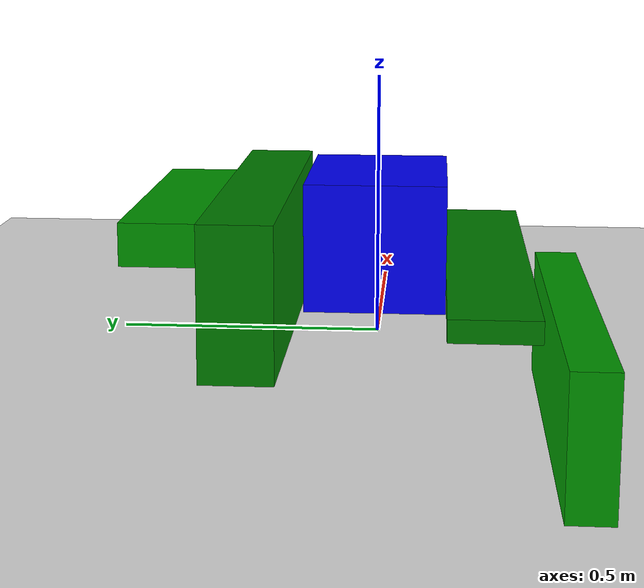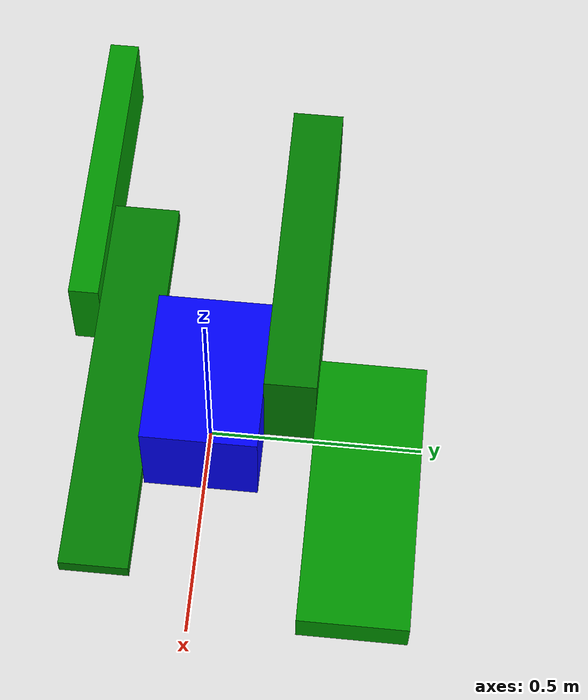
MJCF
<mujoco>
    <worldbody>
    <light diffuse=".5 .5 .5" pos="0 0 3" dir="0 0 -1"/>
    <geom type="plane" size="5 5 0.1" rgba=".9 0.9 0.9 1"/>
    <body name="main body" pos="0 0 .2">
        <joint type="free"/>
        <geom type="box" size="0.18047773148719906 0.13080066254240705 0.11916331009378561" rgba="0 0 1 1" mass="1"/>
        <site name="marker" pos="0 0 0" size="0.05"/>
        <site name="robot_center" pos="0 0 0" size="0.01"/>
        <body name="left_leg1" pos="-0.3291747024742631 0.18988389502805877 0.023279240054351114">
            <joint name="left_leg1_joint" type="hinge" axis="0 1 0" pos="0 0 0"/>
            <geom type="box" size="0.36819440166063305 0.05908323248565173 0.12480892963960383" rgba="0 .5 0 1" mass="2"/>
            <body name="left_leg2" pos="0.5485452647270391 0.18098970052843838 -0.04">
                <joint name="left_leg2_joint" type="hinge" axis="0 1 0" pos="0 0 0"/>
                <geom type="box" size="0.3164617686941635 0.12190646804278665 0.04257333171506409" rgba="0 .6 0 1" mass="2"/>
            </body>
        </body>
        <body name="right_leg1" pos="-0.04260883222283396 -0.20884463125000008 -0.059088154744180915">
            <joint name="right_leg1_joint" type="hinge" axis="0 1 0" pos="0 0 0"/>
            <geom type="box" size="0.4708041637031166 0.07804396870759303 0.02" rgba="0 .5 0 1" mass="2"/>
            <body name="right_leg2" pos="-0.5540429468560358 -0.1135801387349309 -0.04">
                <joint name="right_leg2_joint" type="hinge" axis="0 1 0" pos="0 0 0"/>
                <geom type="box" size="0.364205186352617 0.035536170027337874 0.11242486296693348" rgba="0 .6 0 1" mass="2"/>
            </body>
        </body>
    </body>
    </worldbody>
    <sensor>
        <framepos objtype="site" objname="marker"/>
        <velocimeter name="robot_velocity" site="robot_center"/>
    </sensor>
    <actuator>
        <position joint="left_leg1_joint" kp="10"/>
        <position joint="left_leg2_joint" kp="10"/>
        <position joint="right_leg1_joint" kp="10"/>
        <position joint="right_leg2_joint" kp="10"/>
    </actuator>
</mujoco>
